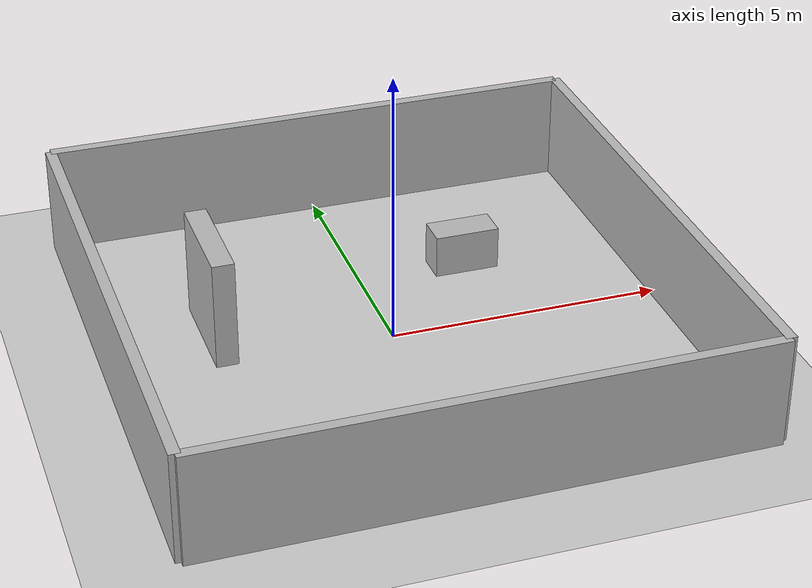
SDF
<?xml version="1.0" ?>
<sdf version="1.6">
  <world name="indoor_lab">
    <!-- Ground plane -->
    <include>
      <uri>model://ground_plane</uri>
    </include>

    <!-- Sun -->
    <include>
      <uri>model://sun</uri>
    </include>

    <!-- Indoor lab: structured environment with flat floor -->
    <!-- Walls -->
    <model name="wall_north">
      <static>true</static>
      <pose>0 5 1 0 0 0</pose>
      <link name="link">
        <collision name="collision">
          <geometry><box><size>10 0.2 2</size></box></geometry>
        </collision>
        <visual name="visual">
          <geometry><box><size>10 0.2 2</size></box></geometry>
        </visual>
      </link>
    </model>

    <model name="wall_south">
      <static>true</static>
      <pose>0 -5 1 0 0 0</pose>
      <link name="link">
        <collision name="collision">
          <geometry><box><size>10 0.2 2</size></box></geometry>
        </collision>
        <visual name="visual">
          <geometry><box><size>10 0.2 2</size></box></geometry>
        </visual>
      </link>
    </model>

    <model name="wall_east">
      <static>true</static>
      <pose>5 0 1 0 0 1.5708</pose>
      <link name="link">
        <collision name="collision">
          <geometry><box><size>10 0.2 2</size></box></geometry>
        </collision>
        <visual name="visual">
          <geometry><box><size>10 0.2 2</size></box></geometry>
        </visual>
      </link>
    </model>

    <model name="wall_west">
      <static>true</static>
      <pose>-5 0 1 0 0 1.5708</pose>
      <link name="link">
        <collision name="collision">
          <geometry><box><size>10 0.2 2</size></box></geometry>
        </collision>
        <visual name="visual">
          <geometry><box><size>10 0.2 2</size></box></geometry>
        </visual>
      </link>
    </model>

    <!-- Obstacles (tables, shelves) -->
    <model name="table1">
      <static>true</static>
      <pose>2 2 0.4 0 0 0</pose>
      <link name="link">
        <collision name="collision">
          <geometry><box><size>1.2 0.6 0.8</size></box></geometry>
        </collision>
        <visual name="visual">
          <geometry><box><size>1.2 0.6 0.8</size></box></geometry>
        </visual>
      </link>
    </model>

    <model name="shelf1">
      <static>true</static>
      <pose>-3 1 1 0 0 0</pose>
      <link name="link">
        <collision name="collision">
          <geometry><box><size>0.4 2 2</size></box></geometry>
        </collision>
        <visual name="visual">
          <geometry><box><size>0.4 2 2</size></box></geometry>
        </visual>
      </link>
    </model>

    <!-- Physics -->
    <physics type="ode">
      <max_step_size>0.001</max_step_size>
      <real_time_factor>1</real_time_factor>
    </physics>
  </world>
</sdf>
